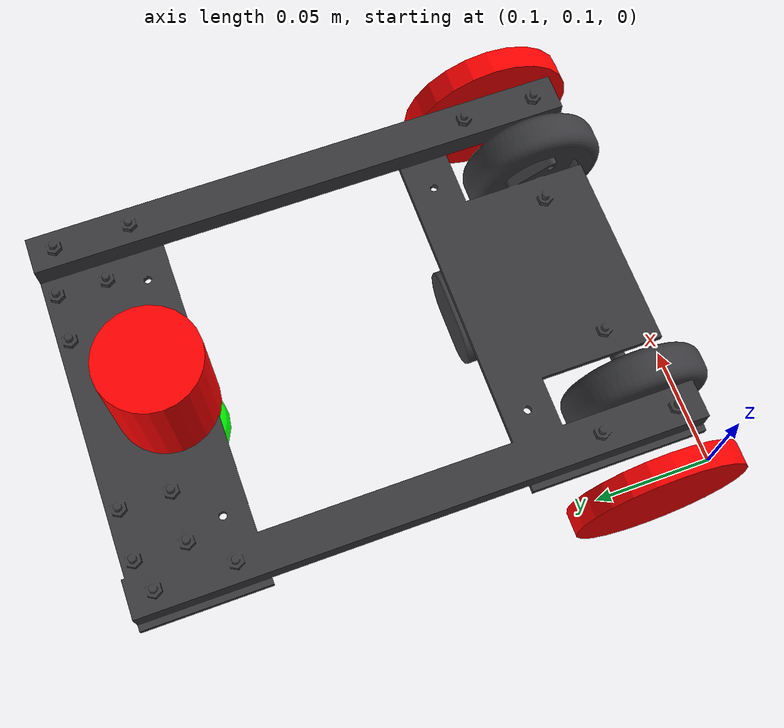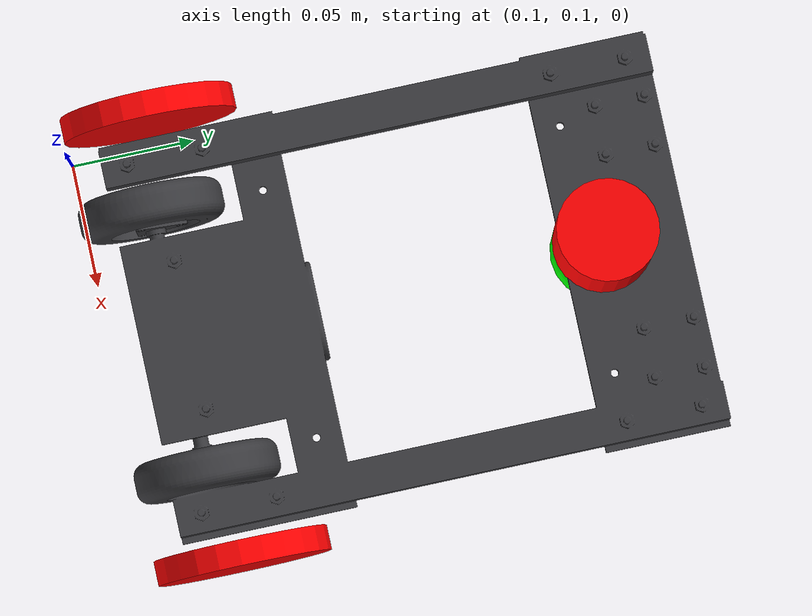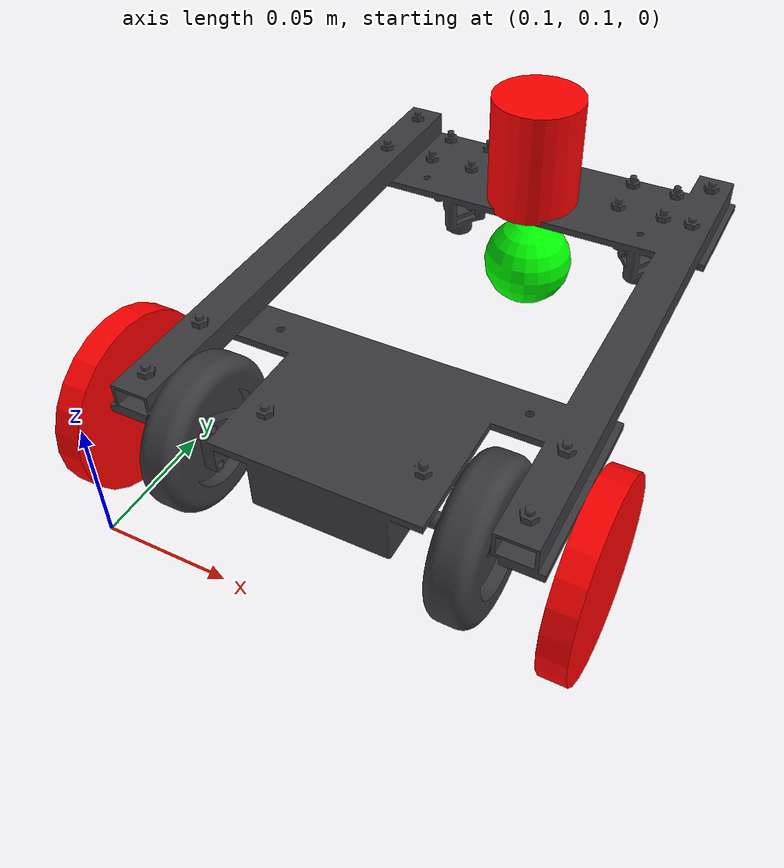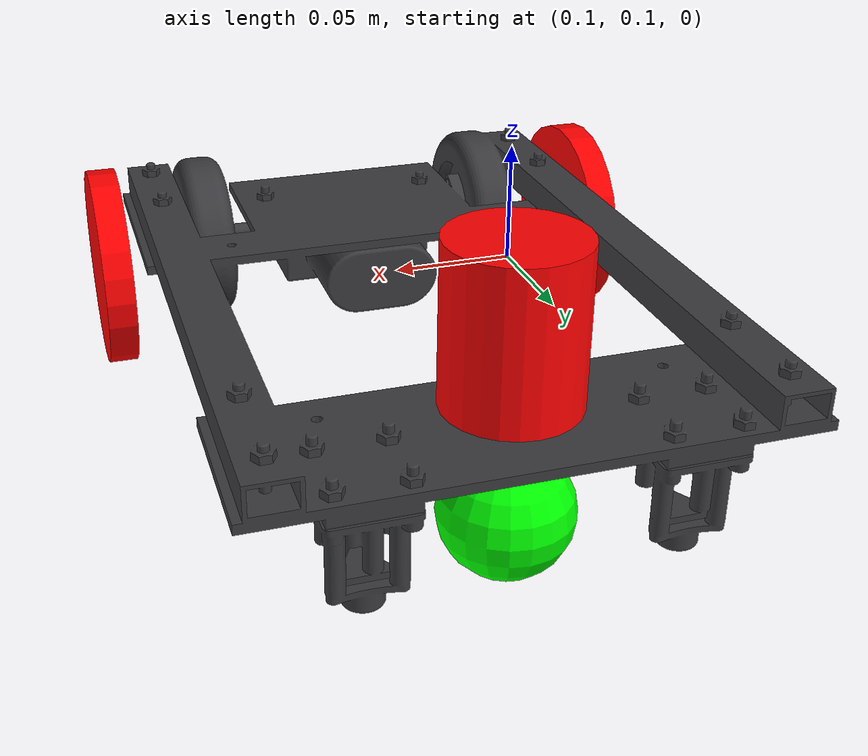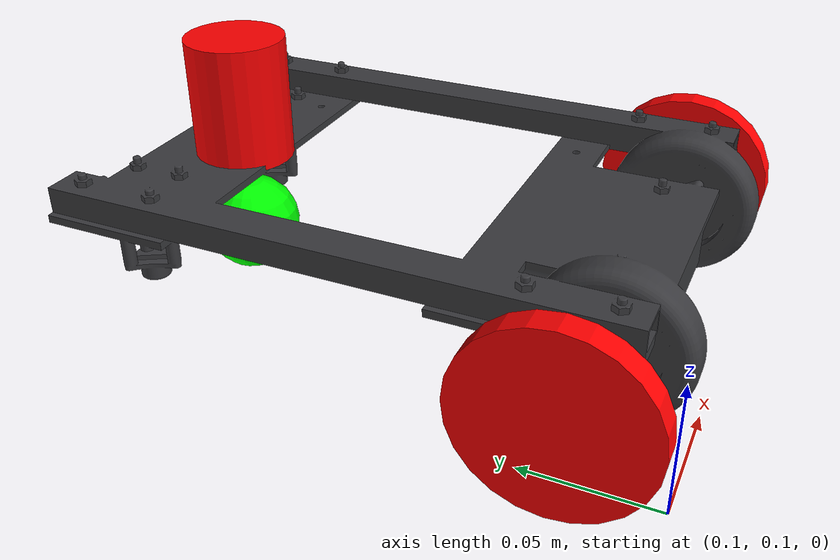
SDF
<sdf version="1.6">
 <world name="nav_dev_world1">
  <physics name="1ms" type="ignored">
   <max_step_size>0.001</max_step_size>
   <real_time_factor>1.0</real_time_factor>
  </physics>
  <plugin filename="libignition-gazebo-physics-system.so" name="ignition::gazebo::systems::Physics"/>
  <plugin filename="libignition-gazebo-user-commands-system.so" name="ignition::gazebo::systems::UserCommands"/>
  <plugin filename="libignition-gazebo-scene-broadcaster-system.so" name="ignition::gazebo::systems::SceneBroadcaster"/>
  <plugin filename="ignition-gazebo-scene-broadcaster-system" name="ignition::gazebo::systems::SceneBroadcaster"/>
  <plugin filename="libignition-gazebo-sensors-system.so" name="ignition::gazebo::systems::Sensors">
   <render_engine>ogre2</render_engine>
  </plugin>
  <plugin filename="ignition-gazebo-contact-system" name="ignition::gazebo::systems::Contact"/>
  <plugin filename="libignition-gazebo-imu-system.so" name="ignition::gazebo::systems::Imu"/>
  <light name="sun" type="directional">
   <pose>0 0 10 0 0 0</pose>
   <diffuse>0.8 0.8 0.8 1</diffuse>
   <specular>0.2 0.2 0.2 1</specular>
   <attenuation>
    <range>1000</range>
    <constant>0.9</constant>
    <linear>0.01</linear>
    <quadratic>0.001</quadratic>
   </attenuation>
   <direction>-0.5 0.1 -0.9</direction>
  </light>
  <model name="LidarRobo">
   <pose>0.1 0.1 0.075 0 0 0</pose>
   <include><uri>model://robots/LidarRobo</uri></include>
  </model>
 </world>
</sdf>

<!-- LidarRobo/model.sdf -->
<sdf version="1.6">
  <model name="my_robo" canonical_link='chassis'>
    <link name="chassis">
      <inertial> <!--inertial properties of the link mass, inertia matix-->
        <mass>1.14395</mass>
        <inertia>
            <ixx>0.095329</ixx>
            <ixy>0</ixy>
            <ixz>0</ixz>
            <iyy>0.381317</iyy>
            <iyz>0</iyz>
            <izz>0.476646</izz>
        </inertia>
      </inertial>
      <!--lidarの取り付け-->
      <sensor name='gpu_lidar' type='gpu_lidar'>"
            <pose relative_to='lidar_frame'>0 0 0 0 0 0</pose>
            <topic>lidar</topic>
            <update_rate>10</update_rate>
            <ray>
                <scan>
                    <horizontal>
                        <samples>640</samples>
                        <resolution>1</resolution>
                        <min_angle>-1.396263</min_angle>
                        <max_angle>1.396263</max_angle>
                    </horizontal>
                    <vertical>
                        <samples>1</samples>
                        <resolution>0.01</resolution>
                        <min_angle>0</min_angle>
                        <max_angle>0</max_angle>
                    </vertical>
                </scan>
                <range>
                    <min>0.08</min>
                    <max>10.0</max>
                    <resolution>0.01</resolution>
                </range>
            </ray>
            <always_on>1</always_on>
            <visualize>true</visualize>
        </sensor>
      <collision name="collision">
        <geometry>
          <mesh>
            <scale>1 1 1</scale>
            <uri>model://my_robo/meshes/2DRoboPrac.stl</uri>
          </mesh>
        </geometry>
        <surface>
          <friction>
            <ode>
              <mu>1.3</mu>
              <mu2>1.3</mu2>
            </ode>
          </friction>
        </surface>
      </collision>
      <visual name="visual">
        <geometry>
          <mesh>
            <scale>1 1 1</scale>
            <uri>model://my_robo/meshes/2DRoboPrac.dae</uri>
          </mesh>
        </geometry>
      </visual>
    </link>
    <link name='left_wheel'>
      <pose relative_to="chassis">-0.01 0.035 -0.042 -1.5707 0 -1.5707</pose>
      <inertial>
          <mass>1</mass>
          <inertia>
              <ixx>0.043333</ixx>
              <ixy>0</ixy>
              <ixz>0</ixz>
              <iyy>0.043333</iyy>
              <iyz>0</iyz>
              <izz>0.08</izz>
          </inertia>
      </inertial>
      <visual name='visual'>
          <geometry>
              <cylinder>
                  <radius>0.035</radius>
                  <length>0.01</length>
              </cylinder>
          </geometry>
          <material>
              <ambient>1.0 0.0 0.0 1</ambient>
              <diffuse>1.0 0.0 0.0 1</diffuse>
              <specular>1.0 0.0 0.0 1</specular>
          </material>
      </visual>
      <collision name='collision'>
          <geometry>
              <cylinder>
                  <radius>0.035</radius>
                  <length>0.01</length>
              </cylinder>
          </geometry>
      </collision>
    </link>
    <link name='right_wheel'>
      <pose relative_to="chassis">0.17 0.035 -0.042 -1.5707 0 -1.5707</pose>
      <inertial>
          <mass>1</mass>
          <inertia>
              <ixx>0.043333</ixx>
              <ixy>0</ixy>
              <ixz>0</ixz>
              <iyy>0.043333</iyy>
              <iyz>0</iyz>
              <izz>0.08</izz>
          </inertia>
      </inertial>
      <visual name='visual'>
          <geometry>
              <cylinder>
                  <radius>0.035</radius>
                  <length>0.01</length>
              </cylinder>
          </geometry>
          <material>
              <ambient>1.0 0.0 0.0 1</ambient>
              <diffuse>1.0 0.0 0.0 1</diffuse>
              <specular>1.0 0.0 0.0 1</specular>
          </material>
      </visual>
      <collision name='collision'>
          <geometry>
              <cylinder>
                  <radius>0.035</radius>
                  <length>0.01</length>
              </cylinder>
          </geometry>
      </collision>
    </link>
    <frame name="caster_frame" attached_to='chassis'>
      <pose>0.08 0.2 -0.057 0 0 0</pose>
    </frame>
    <!--caster wheel-->
    <link name='caster'>
        <pose relative_to='caster_frame'/>
        <inertial>
            <mass>1</mass>
            <inertia>
                <ixx>0.016</ixx>
                <ixy>0</ixy>
                <ixz>0</ixz>
                <iyy>0.016</iyy>
                <iyz>0</iyz>
                <izz>0.016</izz>
            </inertia>
        </inertial>
        <visual name='visual'>
            <geometry>
                <sphere>
                    <radius>0.02</radius>
                </sphere>
            </geometry>
            <material>
                <ambient>0.0 1 0.0 1</ambient>
                <diffuse>0.0 1 0.0 1</diffuse>
                <specular>0.0 1 0.0 1</specular>
            </material>
        </visual>
        <collision name='collision'>
            <geometry>
                <sphere>
                    <radius>0.02</radius>
                </sphere>
            </geometry>
        </collision>
    </link>
    <!--lidarの取り付け-->
    <frame name="lidar_frame" attached_to='chassis'>
        <pose>0.08 0.2 0 0 0 0</pose>
    </frame>
    <link name='lidar'>
        <pose relative_to='lidar_frame'>0 0 0 0 0 0</pose>
        <inertial>
            <mass>1</mass>
            <inertia>
                <ixx>0.016</ixx>
                <ixy>0</ixy>
                <ixz>0</ixz>
                <iyy>0.016</iyy>
                <iyz>0</iyz>
                <izz>0.016</izz>
            </inertia>
        </inertial>
        <visual name='visual'>
            <geometry>
                <cylinder>
                    <radius>0.02</radius>
                    <length>0.05</length>
                </cylinder>
            </geometry>
            <material>
              <ambient>1.0 0.0 0.0 1</ambient>
              <diffuse>1.0 0.0 0.0 1</diffuse>
              <specular>1.0 0.0 0.0 1</specular>
            </material>
        </visual>
    </link>
    <joint name='left_wheel_joint' type='revolute'>
      <pose relative_to='left_wheel'/>
      <parent>chassis</parent>
      <child>left_wheel</child>
      <axis>
        <xyz expressed_in='__model__'>1 0 0</xyz> <!--can be defined as any frame or even arbitrary frames-->
        <limit>
          <lower>-1.79769e+308</lower>    <!--negative infinity-->
          <upper>1.79769e+308</upper>     <!--positive infinity-->
        </limit>
      </axis>
    </joint>
    <joint name='right_wheel_joint' type='revolute'>
      <pose relative_to='right_wheel'/>
      <parent>chassis</parent>
      <child>right_wheel</child>
      <axis>
        <xyz expressed_in='__model__'>1 0 0</xyz> <!--can be defined as any frame or even arbitrary frames-->
        <limit>
          <lower>-1.79769e+308</lower>    <!--negative infinity-->
          <upper>1.79769e+308</upper>     <!--positive infinity-->
        </limit>
      </axis>
    </joint>
    <joint name='caster_wheel' type='ball'>
        <parent>chassis</parent>
        <child>caster</child>
    </joint>
    <joint name='lidar_joint' type='fixed'>
        <parent>chassis</parent>
        <child>lidar</child>
    </joint>
    <plugin
        filename="libignition-gazebo-diff-drive-system.so"
        name="ignition::gazebo::systems::DiffDrive">
        <left_joint>left_wheel_joint</left_joint>
        <right_joint>right_wheel_joint</right_joint>
        <wheel_separation>1.2</wheel_separation>
        <wheel_radius>0.4</wheel_radius>
        <odom_publish_frequency>1</odom_publish_frequency>
        <topic>cmd_vel</topic>
    </plugin>
     <!-- Joint state publisher -->
      <plugin filename="libignition-gazebo-joint-state-publisher-system.so"
        name="ignition::gazebo::systems::JointStatePublisher">
        <topic>joint_states</topic>
      </plugin>

      <plugin
        filename="ignition-gazebo-pose-publisher-system"
        name="ignition::gazebo::systems::PosePublisher">
        <publish_link_pose>true</publish_link_pose>
        <use_pose_vector_msg>true</use_pose_vector_msg>
        <static_publisher>true</static_publisher>
        <static_update_frequency>1</static_update_frequency>
      </plugin>

      <!-- Global odometer -->
      <plugin
        filename="ignition-gazebo-odometry-publisher-system"
        name="ignition::gazebo::systems::OdometryPublisher">
        <odom_publish_frequency>50</odom_publish_frequency>
        <odom_topic>/odom/tf</odom_topic>
        <odom_frame>odom_test</odom_frame>
        <robot_base_frame>base_footprint</robot_base_frame>
        <tf_topic>/odom/tf</tf_topic>
      </plugin>
  </model>
</sdf>
